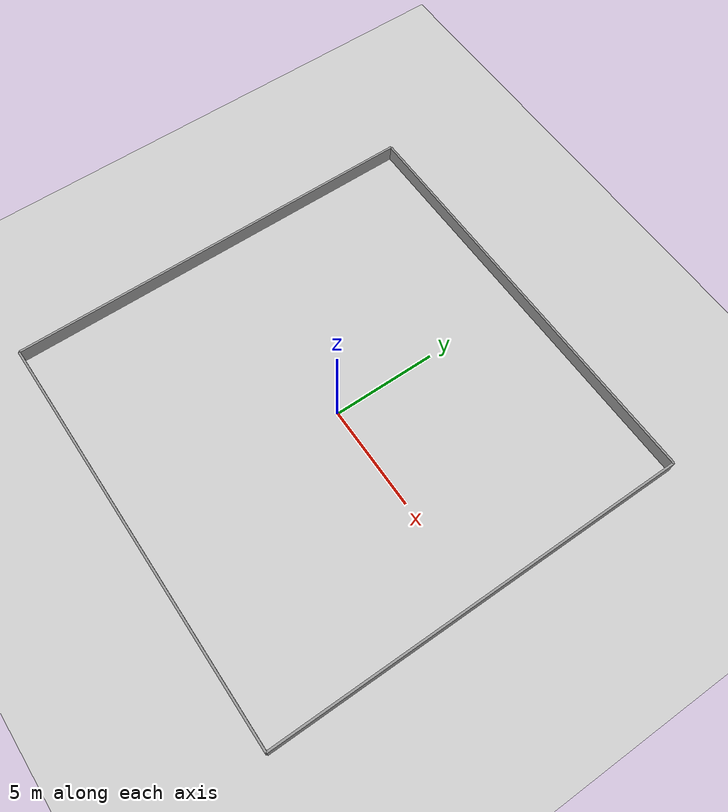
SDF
<?xml version="1.0" ?>
<sdf version="1.6">
  <world name="room_world">
    <!-- 插入光源 -->
    <include>
      <uri>model://sun</uri>
    </include>
    <!-- 插入地面 -->
    <include>
      <uri>model://ground_plane</uri>
    </include>

    <!-- 插入墙壁 -->
    <model name="wall_1">
      <static>true</static>
      <link name="link">
        <collision name="collision">
          <geometry>
            <box>
              <size>20 0.1 0.8</size>
            </box>
          </geometry>
        </collision>
        <visual name="visual">
          <geometry>
            <box>
              <size>20 0.1 0.8</size>
            </box>
          </geometry>
          <material>
            <script>
              <uri>file://media/materials/scripts/gazebo.material</uri>
              <name>Gazebo/Grey</name>
            </script>
          </material>
        </visual>
      </link>
      <pose>0 10 0.4 0 0 0</pose>
    </model>

    <model name="wall_2">
      <static>true</static>
      <link name="link">
        <collision name="collision">
          <geometry>
            <box>
              <size>20 0.1 0.8</size>
            </box>
          </geometry>
        </collision>
        <visual name="visual">
          <geometry>
            <box>
              <size>20 0.1 0.8</size>
            </box>
          </geometry>
          <material>
            <script>
              <uri>file://media/materials/scripts/gazebo.material</uri>
              <name>Gazebo/Grey</name>
            </script>
          </material>
        </visual>
      </link>
      <pose>0 -10 0.4 0 0 0</pose>
    </model>

    <model name="wall_3">
      <static>true</static>
      <link name="link">
        <collision name="collision">
          <geometry>
            <box>
              <size>0.1 20 0.8</size>
            </box>
          </geometry>
        </collision>
        <visual name="visual">
          <geometry>
            <box>
              <size>0.1 20 0.8</size>
            </box>
          </geometry>
          <material>
            <script>
              <uri>file://media/materials/scripts/gazebo.material</uri>
              <name>Gazebo/Grey</name>
            </script>
          </material>
        </visual>
      </link>
      <pose>10 0 0.4 0 0 0</pose>
    </model>

    <model name="wall_4">
      <static>true</static>
      <link name="link">
        <collision name="collision">
          <geometry>
            <box>
              <size>0.1 20 0.8</size>
            </box>
          </geometry>
        </collision>
        <visual name="visual">
          <geometry>
            <box>
              <size>0.1 20 0.8</size>
            </box>
          </geometry>
          <material>
            <script>
              <uri>file://media/materials/scripts/gazebo.material</uri>
              <name>Gazebo/Grey</name>
            </script>
          </material>
        </visual>
      </link>
      <pose>-10 0 0.4 0 0 0</pose>
    </model>

    <gazebo>
      <plugin name="dynamic_friction_plugin" filename="home/howard/catkin_ws/src/gazebo_plugin/build/libdynamic_friction_plugin.so"/>
    </gazebo>

  </world>
</sdf>
